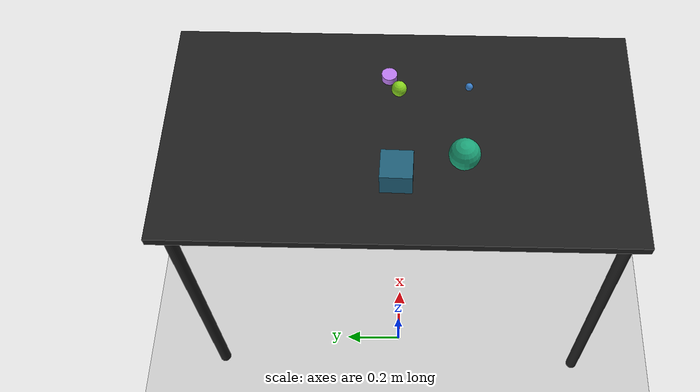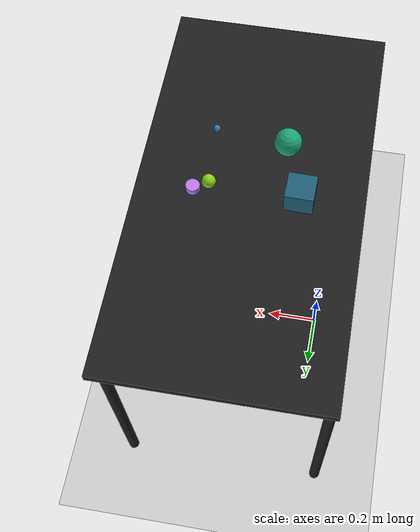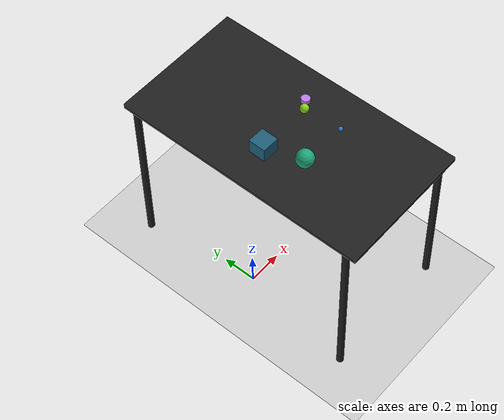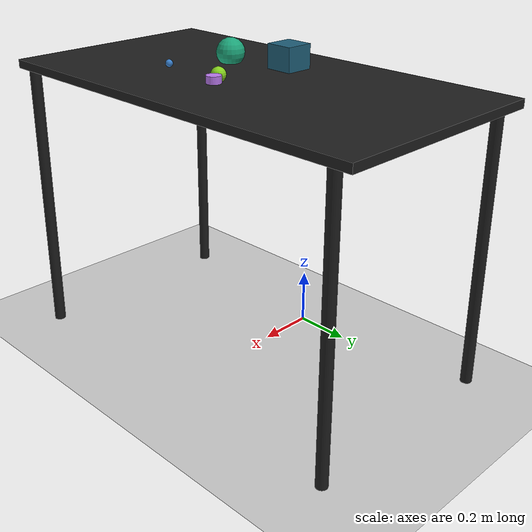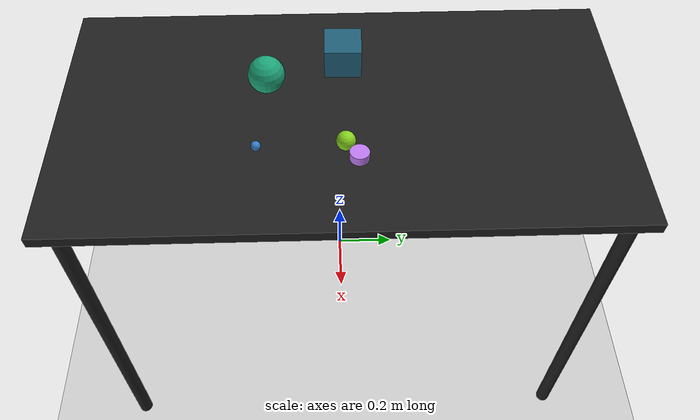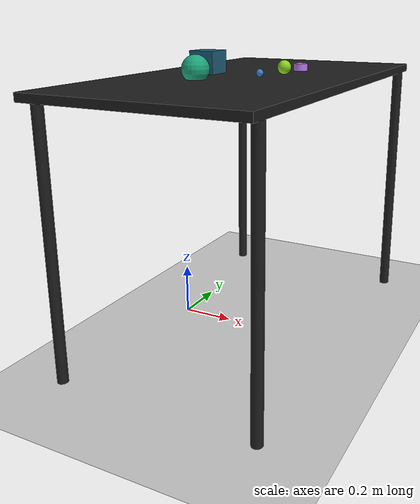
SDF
<?xml version="1.0" ?>
<sdf version="1.6">
  <world name="arm_world">
    <plugin filename="gz-sim-physics-system" name="gz::sim::systems::Physics">
      <engine>
        <filename>libgz-physics-bullet-featherstone-plugin.so</filename>
      </engine>
    </plugin>
    <plugin filename="gz-sim-user-commands-system" name="gz::sim::systems::UserCommands"/>
    <plugin filename="gz-sim-scene-broadcaster-system" name="gz::sim::systems::SceneBroadcaster"/>
    <plugin filename="gz-sim-sensors-system" name="gz::sim::systems::Sensors">
      <render_engine>ogre2</render_engine>
    </plugin>
    <gravity>0.0 0.0 -9.8</gravity>
    <scene>
      <shadows>false</shadows>
    </scene>
    <gui>
      <camera name="user_camera">
        <pose>0.75 -0.75 1.4 0 0.29 2.21</pose>
      </camera>
    </gui>
    <include>
      <uri>https://fuel.gazebosim.org/1.0/OpenRobotics/models/Sun</uri>
    </include>
    <model name="table">
      <static>true</static>
      <include>
        <uri>model://table</uri>
      </include>
      <pose>0.29 0 0 0 0 1.5708</pose>
    </model>
    <model name="ground_plane">
      <static>true</static>
      <link name="link">
        <collision name="collision">
          <geometry>
            <plane>
              <normal>0 0 1</normal>
            </plane>
          </geometry>
          <surface>
            <friction>
              <ode>
                <mu>1.0</mu>
                <mu2>1.0</mu2>
              </ode>
            </friction>
          </surface>
        </collision>
        <visual name="visual">
          <geometry>
            <plane>
              <normal>0 0 1</normal>
              <size>100 100</size>
            </plane>
          </geometry>
          <material>
            <ambient>0.8 0.8 0.8 1</ambient>
            <diffuse>0.8 0.8 0.8 1</diffuse>
            <specular>0.8 0.8 0.8 1</specular>
          </material>
        </visual>
      </link>
    </model>
    <model name="sphere_m_0">
      <pose>0.434 0.006 1.05 0 0 5.36</pose>
      <link name="sphere_m_0_link">
        <collision name="sphere_m_0_collision">
          <geometry>
            <sphere>
              <radius>0.025</radius>
            </sphere>
          </geometry>
        </collision>
        <visual name="sphere_m_0_visual">
          <geometry>
            <sphere>
              <radius>0.025</radius>
            </sphere>
          </geometry>
          <material>
            <ambient>0.53 0.83 0.12 1</ambient>
            <diffuse>0.53 0.83 0.12 1</diffuse>
          </material>
        </visual>
        <velocity_decay>
          <linear>1</linear>
          <angular>1</angular>
        </velocity_decay>
      </link>
    </model>
    <model name="cube_l_1">
      <pose>0.116 0.007 1.05 0 0 6.26</pose>
      <link name="cube_l_1_link">
        <collision name="cube_l_1_collision">
          <geometry>
            <box>
              <size>0.1 0.1 0.1</size>
            </box>
          </geometry>
        </collision>
        <visual name="cube_l_1_visual">
          <geometry>
            <box>
              <size>0.1 0.1 0.1</size>
            </box>
          </geometry>
          <material>
            <ambient>0.12 0.37 0.47 1</ambient>
            <diffuse>0.12 0.37 0.47 1</diffuse>
          </material>
        </visual>
        <velocity_decay>
          <linear>1</linear>
          <angular>1</angular>
        </velocity_decay>
      </link>
    </model>
    <model name="sphere_s_2">
      <pose>0.446 -0.218 1.05 0 0 2.58</pose>
      <link name="sphere_s_2_link">
        <collision name="sphere_s_2_collision">
          <geometry>
            <sphere>
              <radius>0.0125</radius>
            </sphere>
          </geometry>
        </collision>
        <visual name="sphere_s_2_visual">
          <geometry>
            <sphere>
              <radius>0.0125</radius>
            </sphere>
          </geometry>
          <material>
            <ambient>0.22 0.5 0.8 1</ambient>
            <diffuse>0.22 0.5 0.8 1</diffuse>
          </material>
        </visual>
        <velocity_decay>
          <linear>1</linear>
          <angular>1</angular>
        </velocity_decay>
      </link>
    </model>
    <model name="cylinder_m_3">
      <pose>0.483 0.038 1.05 0 0 0.79</pose>
      <link name="cylinder_m_3_link">
        <collision name="cylinder_m_3_collision">
          <geometry>
            <cylinder>
              <radius>0.025</radius>
              <length>0.025</length>
            </cylinder>
          </geometry>
        </collision>
        <visual name="cylinder_m_3_visual">
          <geometry>
            <cylinder>
              <radius>0.025</radius>
              <length>0.025</length>
            </cylinder>
          </geometry>
          <material>
            <ambient>0.74 0.48 0.94 1</ambient>
            <diffuse>0.74 0.48 0.94 1</diffuse>
          </material>
        </visual>
        <velocity_decay>
          <linear>1</linear>
          <angular>1</angular>
        </velocity_decay>
      </link>
    </model>
    <model name="sphere_l_4">
      <pose>0.188 -0.2 1.05 0 0 3.73</pose>
      <link name="sphere_l_4_link">
        <collision name="sphere_l_4_collision">
          <geometry>
            <sphere>
              <radius>0.05</radius>
            </sphere>
          </geometry>
        </collision>
        <visual name="sphere_l_4_visual">
          <geometry>
            <sphere>
              <radius>0.05</radius>
            </sphere>
          </geometry>
          <material>
            <ambient>0.11 0.65 0.48 1</ambient>
            <diffuse>0.11 0.65 0.48 1</diffuse>
          </material>
        </visual>
        <velocity_decay>
          <linear>1</linear>
          <angular>1</angular>
        </velocity_decay>
      </link>
    </model>
  </world>
</sdf>

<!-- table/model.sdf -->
<sdf version="1.5">
  <model name="table">
    <static>true</static>
    <link name="link">
      <collision name="surface">
        <pose>0 0 1.0 0 0 0</pose>
        <geometry>
          <box>
            <size>1.5 0.8 0.03</size>
          </box>
        </geometry>
        <surface>
          <friction>
            <ode>
              <mu>0.6</mu>
              <mu2>0.6</mu2>
            </ode>
          </friction>
        </surface>
      </collision>
      <visual name="surface">
        <pose>0 0 1.0 0 0 0</pose>
        <geometry>
          <box>
            <size>1.5 0.8 0.03</size>
          </box>
        </geometry>
        <material>
          <script>
            <uri>file://media/materials/scripts/gazebo.material</uri>
            <name>Gazebo/Black</name>
          </script>
        </material>
      </visual>
      <collision name="front_left_leg">
        <pose>0.68 0.38 0.5 0 0 0</pose>
        <geometry>
          <cylinder>
            <radius>0.02</radius>
            <length>1.0</length>
          </cylinder>
        </geometry>
      </collision>
      <visual name="front_left_leg">
        <pose>0.68 0.38 0.5 0 0 0</pose>
        <geometry>
          <cylinder>
            <radius>0.02</radius>
            <length>1.0</length>
          </cylinder>
        </geometry>
        <material>
          <script>
            <uri>file://media/materials/scripts/gazebo.material</uri>
            <name>Gazebo/Black</name>
          </script>
        </material>
      </visual>
      <collision name="front_right_leg">
        <pose>0.68 -0.38 0.5 0 0 0</pose>
        <geometry>
          <cylinder>
            <radius>0.02</radius>
            <length>1.0</length>
          </cylinder>
        </geometry>
      </collision>
      <visual name="front_right_leg">
        <pose>0.68 -0.38 0.5 0 0 0</pose>
        <geometry>
          <cylinder>
            <radius>0.02</radius>
            <length>1.0</length>
          </cylinder>
        </geometry>
        <material>
          <script>
            <uri>file://media/materials/scripts/gazebo.material</uri>
            <name>Gazebo/Black</name>
          </script>
        </material>
      </visual>
      <collision name="back_right_leg">
        <pose>-0.68 -0.38 0.5 0 0 0</pose>
        <geometry>
          <cylinder>
            <radius>0.02</radius>
            <length>1.0</length>
          </cylinder>
        </geometry>
      </collision>
      <visual name="back_right_leg">
        <pose>-0.68 -0.38 0.5 0 0 0</pose>
        <geometry>
          <cylinder>
            <radius>0.02</radius>
            <length>1.0</length>
          </cylinder>
        </geometry>
        <material>
          <script>
            <uri>file://media/materials/scripts/gazebo.material</uri>
            <name>Gazebo/Black</name>
          </script>
        </material>
      </visual>
      <collision name="back_left_leg">
        <pose>-0.68 0.38 0.5 0 0 0</pose>
        <geometry>
          <cylinder>
            <radius>0.02</radius>
            <length>1.0</length>
          </cylinder>
        </geometry>
      </collision>
      <visual name="back_left_leg">
        <pose>-0.68 0.38 0.5 0 0 0</pose>
        <geometry>
          <cylinder>
            <radius>0.02</radius>
            <length>1.0</length>
          </cylinder>
        </geometry>
        <material>
          <script>
            <uri>file://media/materials/scripts/gazebo.material</uri>
            <name>Gazebo/Black</name>
          </script>
        </material>
      </visual>
    </link>
  </model>
</sdf>
